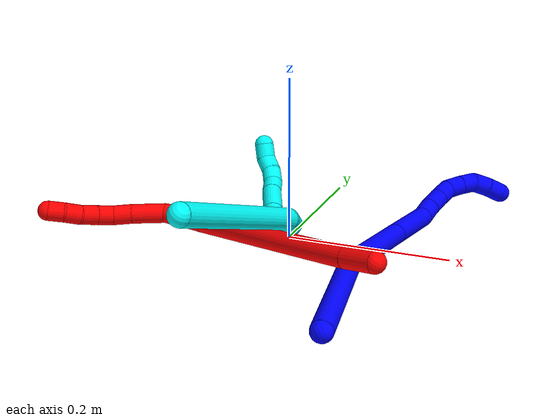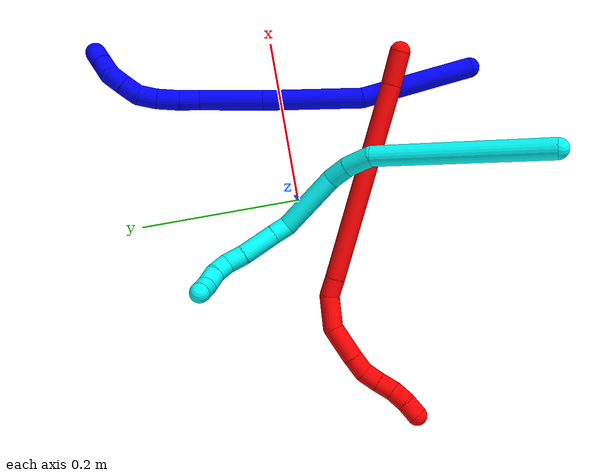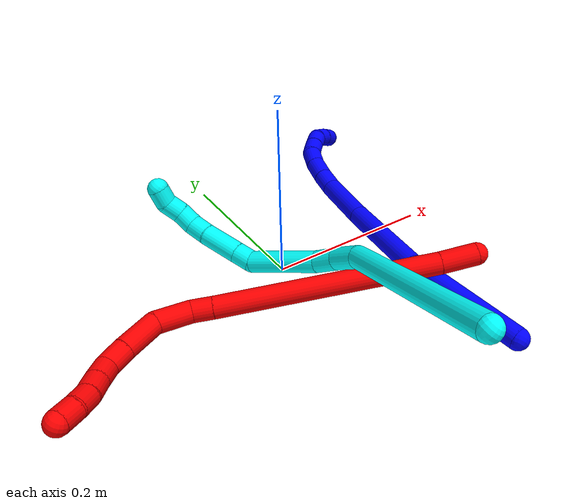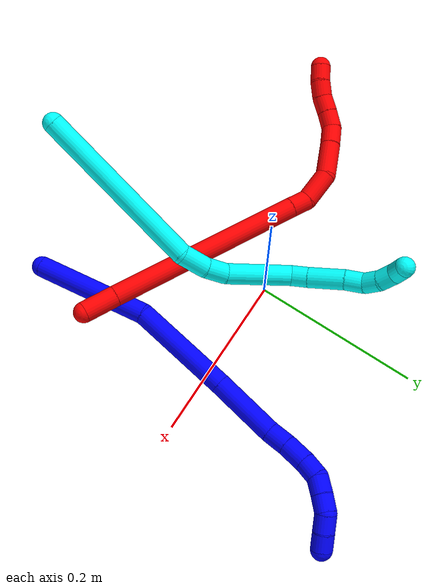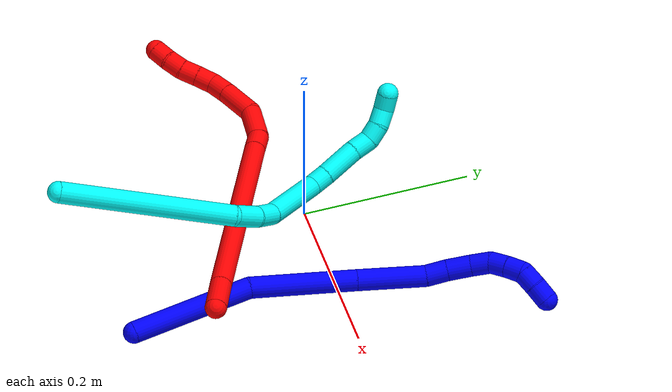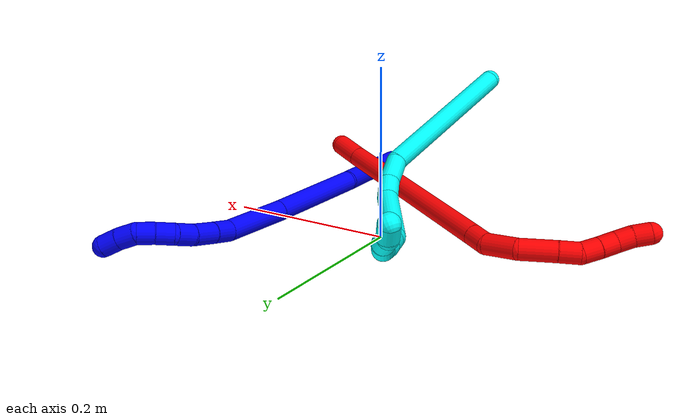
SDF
<sdf version="1.7">
 <world name="default">
  <plugin name="TubeGeneratorPlugin" filename="libtube_generator_plugin.so"/>
  <model name="photoneo_s_sensor">
   <static>1</static>
   <pose>0 0 2 1.57079 1.57079 3.14159</pose>
   <link name="link">
    <inertial><mass>0.1</mass></inertial>
    <sensor name="sensor" type="depth">
     <update_rate>30</update_rate>
     <camera>
      <horizontal_fov>1.22</horizontal_fov>
      <image><width>1920</width><height>1200</height><format>B8G8R8</format></image>
      <clip><near>0.1</near><far>4</far></clip>
      <depth_camera><output>points</output></depth_camera>
     </camera>
     <plugin name="camera_plugin" filename="libgazebo_ros_depth_camera.so">
      <baseline>0.2</baseline>
      <alwaysOn>1</alwaysOn>
      <updateRate>0.0</updateRate>
      <cameraName>camera_ir</cameraName>
      <imageTopicName>/camera/color/image_raw</imageTopicName>
      <cameraInfoTopicName>/camera/color/camera_info</cameraInfoTopicName>
      <depthImageTopicName>/camera/depth/image_raw</depthImageTopicName>
      <depthImageCameraInfoTopicName>/camera/depth/camera_info</depthImageCameraInfoTopicName>
      <pointCloudTopicName>/camera/depth/points</pointCloudTopicName>
      <frameName>fr_optical</frameName>
      <pointCloudCutoff>0.1</pointCloudCutoff>
      <pointCloudCutoffMax>2.0</pointCloudCutoffMax>
      <distortionK1>0</distortionK1>
      <distortionK2>0</distortionK2>
      <distortionK3>0</distortionK3>
      <distortionT1>0</distortionT1>
      <distortionT2>0</distortionT2>
      <CxPrime>0</CxPrime>
      <Cx>0</Cx>
      <Cy>0</Cy>
      <focalLength>0</focalLength>
      <hackBaseline>0</hackBaseline>
     </plugin>
    </sensor>
   </link>
  </model>
  <gravity>0 0 -9.8</gravity>
  <magnetic_field>6e-06 2.3e-05 -4.2e-05</magnetic_field>
  <atmosphere type="adiabatic"/>
  <physics name="default_physics" default="0" type="ode">
   <max_step_size>0.003</max_step_size>
   <real_time_factor>1</real_time_factor>
   <real_time_update_rate>1000</real_time_update_rate>
   <max_contacts>10000</max_contacts>
   <ode>
    <solver>
     <type>quick</type>
     <iters>100</iters>
     <sor>1.3</sor>
     <use_dynamic_moi_rescaling>0</use_dynamic_moi_rescaling>
    </solver>
    <constraints>
     <contact_max_correcting_vel>0</contact_max_correcting_vel>
     <contact_surface_layer>0.001</contact_surface_layer>
     <cfm>0</cfm>
     <erp>0.2</erp>
    </constraints>
   </ode>
  </physics>
  <scene><ambient>0.4 0.4 0.4 1</ambient><background>0.7 0.7 0.7 1</background><shadows>0</shadows></scene>
  <audio><device>default</device></audio>
  <spherical_coordinates>
   <surface_model>EARTH_WGS84</surface_model>
   <latitude_deg>0</latitude_deg>
   <longitude_deg>0</longitude_deg>
   <elevation>0</elevation>
   <heading_deg>0</heading_deg>
  </spherical_coordinates>
  <model name="bin">
   <static>1</static>
   <link name="bottom">
    <collision name="collision-bottom">
     <pose>0 0 -0.01 0 -0 0</pose>
     <geometry><box><size>0.8 0.6 0.02</size></box></geometry>
     <surface>
      <friction><ode><mu>100</mu><mu2>100</mu2></ode></friction>
      <contact><collide_bitmask>65535</collide_bitmask></contact>
     </surface>
    </collision>
   </link>
   <link name="west_wall">
    <collision name="collision-west_wall">
     <pose>-0.41 0 0.1 0 -0 0</pose>
     <geometry><box><size>0.02 0.6 0.2</size></box></geometry>
     <surface>
      <friction><ode><mu>100</mu><mu2>100</mu2></ode></friction>
      <contact><collide_bitmask>65535</collide_bitmask></contact>
     </surface>
    </collision>
   </link>
   <link name="east_wall">
    <collision name="collision-east_wall">
     <pose>0.41 0 0.1 0 -0 0</pose>
     <geometry><box><size>0.02 0.6 0.2</size></box></geometry>
     <surface>
      <friction><ode><mu>100</mu><mu2>100</mu2></ode></friction>
      <contact><collide_bitmask>65535</collide_bitmask></contact>
     </surface>
    </collision>
   </link>
   <link name="south_wall">
    <collision name="collision-south_wall">
     <pose>0 -0.31 0.1 0 -0 0</pose>
     <geometry><box><size>0.8 0.02 0.2</size></box></geometry>
     <surface>
      <friction><ode><mu>100</mu><mu2>100</mu2></ode></friction>
      <contact><collide_bitmask>65535</collide_bitmask></contact>
     </surface>
    </collision>
   </link>
   <link name="north_wall">
    <collision name="collision-north_wall">
     <pose>0 0.31 0.1 0 -0 0</pose>
     <geometry><box><size>0.8 0.02 0.2</size></box></geometry>
     <surface>
      <friction><ode><mu>100</mu><mu2>100</mu2></ode></friction>
      <contact><collide_bitmask>65535</collide_bitmask></contact>
     </surface>
    </collision>
   </link>
  </model>
  <model name="1">
   <static>0</static>
   <link name="1">
    <collision name="collision-cylinder-e_1_1_4">
     <pose>-0.020411 0.063353 -0.022928 -1.91804 -0.294154 0.416217</pose>
     <geometry><cylinder><radius>0.0125</radius><length>0.140796</length></cylinder></geometry>
     <surface>
      <friction><ode><mu>1.16</mu><mu2>1.16</mu2><slip1>0</slip1><slip2>0</slip2></ode></friction>
      <contact><ode><kp>1e+06</kp><kd>1</kd><max_vel>0</max_vel><min_depth>0.001</min_depth></ode></contact>
     </surface>
    </collision>
    <visual name="visual-cylinder-e_1_1_4">
     <pose>-0.020411 0.063353 -0.022928 -1.91804 -0.294154 0.416217</pose>
     <geometry><cylinder><radius>0.0125</radius><length>0.140796</length></cylinder></geometry>
     <material><ambient>0 0 1 1</ambient></material>
    </visual>
    <collision name="collision-cylinder-e_2_4_5">
     <pose>-0.071179 0.171336 -0.074577 -2.14262 -0.519578 0.906596</pose>
     <geometry><cylinder><radius>0.0125</radius><length>0.122285</length></cylinder></geometry>
     <surface>
      <friction><ode><mu>1.16</mu><mu2>1.16</mu2><slip1>0</slip1><slip2>0</slip2></ode></friction>
      <contact><ode><kp>1e+06</kp><kd>1</kd><max_vel>0</max_vel><min_depth>0.001</min_depth></ode></contact>
     </surface>
    </collision>
    <visual name="visual-cylinder-e_2_4_5">
     <pose>-0.071179 0.171336 -0.074577 -2.14262 -0.519578 0.906596</pose>
     <geometry><cylinder><radius>0.0125</radius><length>0.122285</length></cylinder></geometry>
     <material><ambient>0 0 1 1</ambient></material>
    </visual>
    <collision name="collision-cylinder-e_3_5_6">
     <pose>-0.120974 0.244403 -0.123163 -2.18054 -0.510751 0.92863</pose>
     <geometry><cylinder><radius>0.0125</radius><length>0.079523</length></cylinder></geometry>
     <surface>
      <friction><ode><mu>1.16</mu><mu2>1.16</mu2><slip1>0</slip1><slip2>0</slip2></ode></friction>
      <contact><ode><kp>1e+06</kp><kd>1</kd><max_vel>0</max_vel><min_depth>0.001</min_depth></ode></contact>
     </surface>
    </collision>
    <visual name="visual-cylinder-e_3_5_6">
     <pose>-0.120974 0.244403 -0.123163 -2.18054 -0.510751 0.92863</pose>
     <geometry><cylinder><radius>0.0125</radius><length>0.079523</length></cylinder></geometry>
     <material><ambient>0 0 1 1</ambient></material>
    </visual>
    <collision name="collision-cylinder-e_4_6_7">
     <pose>-0.143781 0.282793 -0.150114 -2.18956 -0.269159 0.513648</pose>
     <geometry><cylinder><radius>0.0125</radius><length>0.02535</length></cylinder></geometry>
     <surface>
      <friction><ode><mu>1.16</mu><mu2>1.16</mu2><slip1>0</slip1><slip2>0</slip2></ode></friction>
      <contact><ode><kp>1e+06</kp><kd>1</kd><max_vel>0</max_vel><min_depth>0.001</min_depth></ode></contact>
     </surface>
    </collision>
    <visual name="visual-cylinder-e_4_6_7">
     <pose>-0.143781 0.282793 -0.150114 -2.18956 -0.269159 0.513648</pose>
     <geometry><cylinder><radius>0.0125</radius><length>0.02535</length></cylinder></geometry>
     <material><ambient>0 0 1 1</ambient></material>
    </visual>
    <collision name="collision-cylinder-e_5_7_8">
     <pose>-0.151322 0.302948 -0.165828 -2.27274 -0.302532 0.634825</pose>
     <geometry><cylinder><radius>0.0125</radius><length>0.027992</length></cylinder></geometry>
     <surface>
      <friction><ode><mu>1.16</mu><mu2>1.16</mu2><slip1>0</slip1><slip2>0</slip2></ode></friction>
      <contact><ode><kp>1e+06</kp><kd>1</kd><max_vel>0</max_vel><min_depth>0.001</min_depth></ode></contact>
     </surface>
    </collision>
    <visual name="visual-cylinder-e_5_7_8">
     <pose>-0.151322 0.302948 -0.165828 -2.27274 -0.302532 0.634825</pose>
     <geometry><cylinder><radius>0.0125</radius><length>0.027992</length></cylinder></geometry>
     <material><ambient>0 0 1 1</ambient></material>
    </visual>
    <collision name="collision-cylinder-e_6_8_9">
     <pose>-0.158162 0.320309 -0.182772 -2.43095 -0.238636 0.625002</pose>
     <geometry><cylinder><radius>0.0125</radius><length>0.022588</length></cylinder></geometry>
     <surface>
      <friction><ode><mu>1.16</mu><mu2>1.16</mu2><slip1>0</slip1><slip2>0</slip2></ode></friction>
      <contact><ode><kp>1e+06</kp><kd>1</kd><max_vel>0</max_vel><min_depth>0.001</min_depth></ode></contact>
     </surface>
    </collision>
    <visual name="visual-cylinder-e_6_8_9">
     <pose>-0.158162 0.320309 -0.182772 -2.43095 -0.238636 0.625002</pose>
     <geometry><cylinder><radius>0.0125</radius><length>0.022588</length></cylinder></geometry>
     <material><ambient>0 0 1 1</ambient></material>
    </visual>
    <collision name="collision-cylinder-e_7_9_10">
     <pose>-0.164907 0.33003 -0.200234 -2.86829 -0.405395 1.96224</pose>
     <geometry><cylinder><radius>0.0125</radius><length>0.020668</length></cylinder></geometry>
     <surface>
      <friction><ode><mu>1.16</mu><mu2>1.16</mu2><slip1>0</slip1><slip2>0</slip2></ode></friction>
      <contact><ode><kp>1e+06</kp><kd>1</kd><max_vel>0</max_vel><min_depth>0.001</min_depth></ode></contact>
     </surface>
    </collision>
    <visual name="visual-cylinder-e_7_9_10">
     <pose>-0.164907 0.33003 -0.200234 -2.86829 -0.405395 1.96224</pose>
     <geometry><cylinder><radius>0.0125</radius><length>0.020668</length></cylinder></geometry>
     <material><ambient>0 0 1 1</ambient></material>
    </visual>
    <collision name="collision-cylinder-e_8_10_11">
     <pose>-0.173551 0.334601 -0.218049 -2.91414 -0.474189 2.2585</pose>
     <geometry><cylinder><radius>0.0125</radius><length>0.020009</length></cylinder></geometry>
     <surface>
      <friction><ode><mu>1.16</mu><mu2>1.16</mu2><slip1>0</slip1><slip2>0</slip2></ode></friction>
      <contact><ode><kp>1e+06</kp><kd>1</kd><max_vel>0</max_vel><min_depth>0.001</min_depth></ode></contact>
     </surface>
    </collision>
    <visual name="visual-cylinder-e_8_10_11">
     <pose>-0.173551 0.334601 -0.218049 -2.91414 -0.474189 2.2585</pose>
     <geometry><cylinder><radius>0.0125</radius><length>0.020009</length></cylinder></geometry>
     <material><ambient>0 0 1 1</ambient></material>
    </visual>
    <collision name="collision-cylinder-e_9_11_12">
     <pose>-0.185789 0.335008 -0.233466 2.90875 -0.835864 -2.62658</pose>
     <geometry><cylinder><radius>0.0125</radius><length>0.020677</length></cylinder></geometry>
     <surface>
      <friction><ode><mu>1.16</mu><mu2>1.16</mu2><slip1>0</slip1><slip2>0</slip2></ode></friction>
      <contact><ode><kp>1e+06</kp><kd>1</kd><max_vel>0</max_vel><min_depth>0.001</min_depth></ode></contact>
     </surface>
    </collision>
    <visual name="visual-cylinder-e_9_11_12">
     <pose>-0.185789 0.335008 -0.233466 2.90875 -0.835864 -2.62658</pose>
     <geometry><cylinder><radius>0.0125</radius><length>0.020677</length></cylinder></geometry>
     <material><ambient>0 0 1 1</ambient></material>
    </visual>
    <collision name="collision-cylinder-e_10_12_2">
     <pose>-0.20163 0.331803 -0.245846 2.86407 -0.948738 -2.61046</pose>
     <geometry><cylinder><radius>0.0125</radius><length>0.020111</length></cylinder></geometry>
     <surface>
      <friction><ode><mu>1.16</mu><mu2>1.16</mu2><slip1>0</slip1><slip2>0</slip2></ode></friction>
      <contact><ode><kp>1e+06</kp><kd>1</kd><max_vel>0</max_vel><min_depth>0.001</min_depth></ode></contact>
     </surface>
    </collision>
    <visual name="visual-cylinder-e_10_12_2">
     <pose>-0.20163 0.331803 -0.245846 2.86407 -0.948738 -2.61046</pose>
     <geometry><cylinder><radius>0.0125</radius><length>0.020111</length></cylinder></geometry>
     <material><ambient>0 0 1 1</ambient></material>
    </visual>
    <collision name="collision-sphere-2">
     <pose>-0.209802 0.330198 -0.251482 0 -0 0</pose>
     <geometry><sphere><radius>0.0125</radius></sphere></geometry>
     <surface>
      <friction><ode><mu>1.16</mu><mu2>1.16</mu2><slip1>0</slip1><slip2>0</slip2></ode></friction>
      <contact><ode><kp>1e+06</kp><kd>1</kd><max_vel>0</max_vel><min_depth>0.001</min_depth></ode></contact>
     </surface>
    </collision>
    <visual name="visual-sphere-2">
     <pose>-0.209802 0.330198 -0.251482 0 -0 0</pose>
     <geometry><sphere><radius>0.0125</radius></sphere></geometry>
     <material><ambient>0 0 1 1</ambient></material>
    </visual>
    <collision name="collision-sphere-12">
     <pose>-0.193458 0.333408 -0.240211 0 -0 0</pose>
     <geometry><sphere><radius>0.0125</radius></sphere></geometry>
     <surface>
      <friction><ode><mu>1.16</mu><mu2>1.16</mu2><slip1>0</slip1><slip2>0</slip2></ode></friction>
      <contact><ode><kp>1e+06</kp><kd>1</kd><max_vel>0</max_vel><min_depth>0.001</min_depth></ode></contact>
     </surface>
    </collision>
    <visual name="visual-sphere-12">
     <pose>-0.193458 0.333408 -0.240211 0 -0 0</pose>
     <geometry><sphere><radius>0.0125</radius></sphere></geometry>
     <material><ambient>0 0 1 1</ambient></material>
    </visual>
    <collision name="collision-sphere-11">
     <pose>-0.178119 0.336608 -0.226721 0 -0 0</pose>
     <geometry><sphere><radius>0.0125</radius></sphere></geometry>
     <surface>
      <friction><ode><mu>1.16</mu><mu2>1.16</mu2><slip1>0</slip1><slip2>0</slip2></ode></friction>
      <contact><ode><kp>1e+06</kp><kd>1</kd><max_vel>0</max_vel><min_depth>0.001</min_depth></ode></contact>
     </surface>
    </collision>
    <visual name="visual-sphere-11">
     <pose>-0.178119 0.336608 -0.226721 0 -0 0</pose>
     <geometry><sphere><radius>0.0125</radius></sphere></geometry>
     <material><ambient>0 0 1 1</ambient></material>
    </visual>
    <collision name="collision-sphere-10">
     <pose>-0.168982 0.332594 -0.209378 0 -0 0</pose>
     <geometry><sphere><radius>0.0125</radius></sphere></geometry>
     <surface>
      <friction><ode><mu>1.16</mu><mu2>1.16</mu2><slip1>0</slip1><slip2>0</slip2></ode></friction>
      <contact><ode><kp>1e+06</kp><kd>1</kd><max_vel>0</max_vel><min_depth>0.001</min_depth></ode></contact>
     </surface>
    </collision>
    <visual name="visual-sphere-10">
     <pose>-0.168982 0.332594 -0.209378 0 -0 0</pose>
     <geometry><sphere><radius>0.0125</radius></sphere></geometry>
     <material><ambient>0 0 1 1</ambient></material>
    </visual>
    <collision name="collision-sphere-9">
     <pose>-0.160831 0.327467 -0.19109 0 -0 0</pose>
     <geometry><sphere><radius>0.0125</radius></sphere></geometry>
     <surface>
      <friction><ode><mu>1.16</mu><mu2>1.16</mu2><slip1>0</slip1><slip2>0</slip2></ode></friction>
      <contact><ode><kp>1e+06</kp><kd>1</kd><max_vel>0</max_vel><min_depth>0.001</min_depth></ode></contact>
     </surface>
    </collision>
    <visual name="visual-sphere-9">
     <pose>-0.160831 0.327467 -0.19109 0 -0 0</pose>
     <geometry><sphere><radius>0.0125</radius></sphere></geometry>
     <material><ambient>0 0 1 1</ambient></material>
    </visual>
    <collision name="collision-sphere-4">
     <pose>-0.040821 0.126706 -0.045856 0 -0 0</pose>
     <geometry><sphere><radius>0.0125</radius></sphere></geometry>
     <surface>
      <friction><ode><mu>1.16</mu><mu2>1.16</mu2><slip1>0</slip1><slip2>0</slip2></ode></friction>
      <contact><ode><kp>1e+06</kp><kd>1</kd><max_vel>0</max_vel><min_depth>0.001</min_depth></ode></contact>
     </surface>
    </collision>
    <visual name="visual-sphere-4">
     <pose>-0.040821 0.126706 -0.045856 0 -0 0</pose>
     <geometry><sphere><radius>0.0125</radius></sphere></geometry>
     <material><ambient>0 0 1 1</ambient></material>
    </visual>
    <collision name="collision-sphere-1">
     <geometry><sphere><radius>0.0125</radius></sphere></geometry>
     <surface>
      <friction><ode><mu>1.16</mu><mu2>1.16</mu2><slip1>0</slip1><slip2>0</slip2></ode></friction>
      <contact><ode><kp>1e+06</kp><kd>1</kd><max_vel>0</max_vel><min_depth>0.001</min_depth></ode></contact>
     </surface>
    </collision>
    <visual name="visual-sphere-1">
     <geometry><sphere><radius>0.0125</radius></sphere></geometry>
     <material><ambient>0 0 1 1</ambient></material>
    </visual>
    <collision name="collision-sphere-8">
     <pose>-0.155492 0.31315 -0.174455 0 -0 0</pose>
     <geometry><sphere><radius>0.0125</radius></sphere></geometry>
     <surface>
      <friction><ode><mu>1.16</mu><mu2>1.16</mu2><slip1>0</slip1><slip2>0</slip2></ode></friction>
      <contact><ode><kp>1e+06</kp><kd>1</kd><max_vel>0</max_vel><min_depth>0.001</min_depth></ode></contact>
     </surface>
    </collision>
    <visual name="visual-sphere-8">
     <pose>-0.155492 0.31315 -0.174455 0 -0 0</pose>
     <geometry><sphere><radius>0.0125</radius></sphere></geometry>
     <material><ambient>0 0 1 1</ambient></material>
    </visual>
    <collision name="collision-sphere-5">
     <pose>-0.101537 0.215967 -0.103299 0 -0 0</pose>
     <geometry><sphere><radius>0.0125</radius></sphere></geometry>
     <surface>
      <friction><ode><mu>1.16</mu><mu2>1.16</mu2><slip1>0</slip1><slip2>0</slip2></ode></friction>
      <contact><ode><kp>1e+06</kp><kd>1</kd><max_vel>0</max_vel><min_depth>0.001</min_depth></ode></contact>
     </surface>
    </collision>
    <visual name="visual-sphere-5">
     <pose>-0.101537 0.215967 -0.103299 0 -0 0</pose>
     <geometry><sphere><radius>0.0125</radius></sphere></geometry>
     <material><ambient>0 0 1 1</ambient></material>
    </visual>
    <collision name="collision-sphere-6">
     <pose>-0.140411 0.272839 -0.143026 0 -0 0</pose>
     <geometry><sphere><radius>0.0125</radius></sphere></geometry>
     <surface>
      <friction><ode><mu>1.16</mu><mu2>1.16</mu2><slip1>0</slip1><slip2>0</slip2></ode></friction>
      <contact><ode><kp>1e+06</kp><kd>1</kd><max_vel>0</max_vel><min_depth>0.001</min_depth></ode></contact>
     </surface>
    </collision>
    <visual name="visual-sphere-6">
     <pose>-0.140411 0.272839 -0.143026 0 -0 0</pose>
     <geometry><sphere><radius>0.0125</radius></sphere></geometry>
     <material><ambient>0 0 1 1</ambient></material>
    </visual>
    <collision name="collision-sphere-7">
     <pose>-0.147152 0.292746 -0.157201 0 -0 0</pose>
     <geometry><sphere><radius>0.0125</radius></sphere></geometry>
     <surface>
      <friction><ode><mu>1.16</mu><mu2>1.16</mu2><slip1>0</slip1><slip2>0</slip2></ode></friction>
      <contact><ode><kp>1e+06</kp><kd>1</kd><max_vel>0</max_vel><min_depth>0.001</min_depth></ode></contact>
     </surface>
    </collision>
    <visual name="visual-sphere-7">
     <pose>-0.147152 0.292746 -0.157201 0 -0 0</pose>
     <geometry><sphere><radius>0.0125</radius></sphere></geometry>
     <material><ambient>0 0 1 1</ambient></material>
    </visual>
    <inertial>
     <pose>-0.094858 0.198615 -0.105982 0 -0 0</pose>
     <mass>0.5</mass>
     <inertia>
      <ixx>0.000538</ixx>
      <ixy>0</ixy>
      <ixz>0</ixz>
      <iyy>0.000214</iyy>
      <iyz>0</iyz>
      <izz>-0.000212</izz>
     </inertia>
    </inertial>
   </link>
   <pose>0.12569 -0.239151 0.011496 2.78348 -1.0204 -2.2772</pose>
  </model>
  <model name="2">
   <static>0</static>
   <link name="2">
    <collision name="collision-cylinder-e_1_1_4">
     <pose>-0.015942 0.001799 0.01258 -0.142024 -0.89781 0.068502</pose>
     <geometry><cylinder><radius>0.0125</radius><length>0.040775</length></cylinder></geometry>
     <surface>
      <friction><ode><mu>1.16</mu><mu2>1.16</mu2><slip1>0</slip1><slip2>0</slip2></ode></friction>
      <contact><ode><kp>1e+06</kp><kd>1</kd><max_vel>0</max_vel><min_depth>0.001</min_depth></ode></contact>
     </surface>
    </collision>
    <visual name="visual-cylinder-e_1_1_4">
     <pose>-0.015942 0.001799 0.01258 -0.142024 -0.89781 0.068502</pose>
     <geometry><cylinder><radius>0.0125</radius><length>0.040775</length></cylinder></geometry>
     <material><ambient>1 0 0 1</ambient></material>
    </visual>
    <collision name="collision-cylinder-e_2_4_5">
     <pose>-0.131667 0.0123 0.095554 -0.122996 -0.952833 0.063532</pose>
     <geometry><cylinder><radius>0.0125</radius><length>0.244848</length></cylinder></geometry>
     <surface>
      <friction><ode><mu>1.16</mu><mu2>1.16</mu2><slip1>0</slip1><slip2>0</slip2></ode></friction>
      <contact><ode><kp>1e+06</kp><kd>1</kd><max_vel>0</max_vel><min_depth>0.001</min_depth></ode></contact>
     </surface>
    </collision>
    <visual name="visual-cylinder-e_2_4_5">
     <pose>-0.131667 0.0123 0.095554 -0.122996 -0.952833 0.063532</pose>
     <geometry><cylinder><radius>0.0125</radius><length>0.244848</length></cylinder></geometry>
     <material><ambient>1 0 0 1</ambient></material>
    </visual>
    <collision name="collision-cylinder-e_3_5_6">
     <pose>-0.241291 0.021587 0.172676 -0.086713 -0.969327 0.045679</pose>
     <geometry><cylinder><radius>0.0125</radius><length>0.023871</length></cylinder></geometry>
     <surface>
      <friction><ode><mu>1.16</mu><mu2>1.16</mu2><slip1>0</slip1><slip2>0</slip2></ode></friction>
      <contact><ode><kp>1e+06</kp><kd>1</kd><max_vel>0</max_vel><min_depth>0.001</min_depth></ode></contact>
     </surface>
    </collision>
    <visual name="visual-cylinder-e_3_5_6">
     <pose>-0.241291 0.021587 0.172676 -0.086713 -0.969327 0.045679</pose>
     <geometry><cylinder><radius>0.0125</radius><length>0.023871</length></cylinder></geometry>
     <material><ambient>1 0 0 1</ambient></material>
    </visual>
    <collision name="collision-cylinder-e_4_6_7">
     <pose>-0.266427 0.031587 0.188096 -0.825378 -0.873406 0.403173</pose>
     <geometry><cylinder><radius>0.0125</radius><length>0.039906</length></cylinder></geometry>
     <surface>
      <friction><ode><mu>1.16</mu><mu2>1.16</mu2><slip1>0</slip1><slip2>0</slip2></ode></friction>
      <contact><ode><kp>1e+06</kp><kd>1</kd><max_vel>0</max_vel><min_depth>0.001</min_depth></ode></contact>
     </surface>
    </collision>
    <visual name="visual-cylinder-e_4_6_7">
     <pose>-0.266427 0.031587 0.188096 -0.825378 -0.873406 0.403173</pose>
     <geometry><cylinder><radius>0.0125</radius><length>0.039906</length></cylinder></geometry>
     <material><ambient>1 0 0 1</ambient></material>
    </visual>
    <collision name="collision-cylinder-e_5_7_8">
     <pose>-0.290625 0.058161 0.206258 -1.06647 -0.426432 0.254217</pose>
     <geometry><cylinder><radius>0.0125</radius><length>0.043051</length></cylinder></geometry>
     <surface>
      <friction><ode><mu>1.16</mu><mu2>1.16</mu2><slip1>0</slip1><slip2>0</slip2></ode></friction>
      <contact><ode><kp>1e+06</kp><kd>1</kd><max_vel>0</max_vel><min_depth>0.001</min_depth></ode></contact>
     </surface>
    </collision>
    <visual name="visual-cylinder-e_5_7_8">
     <pose>-0.290625 0.058161 0.206258 -1.06647 -0.426432 0.254217</pose>
     <geometry><cylinder><radius>0.0125</radius><length>0.043051</length></cylinder></geometry>
     <material><ambient>1 0 0 1</ambient></material>
    </visual>
    <collision name="collision-cylinder-e_6_8_9">
     <pose>-0.303897 0.085336 0.221387 -1.05651 -0.362898 0.21332</pose>
     <geometry><cylinder><radius>0.0125</radius><length>0.024612</length></cylinder></geometry>
     <surface>
      <friction><ode><mu>1.16</mu><mu2>1.16</mu2><slip1>0</slip1><slip2>0</slip2></ode></friction>
      <contact><ode><kp>1e+06</kp><kd>1</kd><max_vel>0</max_vel><min_depth>0.001</min_depth></ode></contact>
     </surface>
    </collision>
    <visual name="visual-cylinder-e_6_8_9">
     <pose>-0.303897 0.085336 0.221387 -1.05651 -0.362898 0.21332</pose>
     <geometry><cylinder><radius>0.0125</radius><length>0.024612</length></cylinder></geometry>
     <material><ambient>1 0 0 1</ambient></material>
    </visual>
    <collision name="collision-cylinder-e_7_9_10">
     <pose>-0.309821 0.105884 0.228405 -1.44252 -0.145435 0.127932</pose>
     <geometry><cylinder><radius>0.0125</radius><length>0.021466</length></cylinder></geometry>
     <surface>
      <friction><ode><mu>1.16</mu><mu2>1.16</mu2><slip1>0</slip1><slip2>0</slip2></ode></friction>
      <contact><ode><kp>1e+06</kp><kd>1</kd><max_vel>0</max_vel><min_depth>0.001</min_depth></ode></contact>
     </surface>
    </collision>
    <visual name="visual-cylinder-e_7_9_10">
     <pose>-0.309821 0.105884 0.228405 -1.44252 -0.145435 0.127932</pose>
     <geometry><cylinder><radius>0.0125</radius><length>0.021466</length></cylinder></geometry>
     <material><ambient>1 0 0 1</ambient></material>
    </visual>
    <collision name="collision-cylinder-e_8_10_11">
     <pose>-0.312369 0.126709 0.230724 -1.47771 -0.095772 0.087259</pose>
     <geometry><cylinder><radius>0.0125</radius><length>0.02077</length></cylinder></geometry>
     <surface>
      <friction><ode><mu>1.16</mu><mu2>1.16</mu2><slip1>0</slip1><slip2>0</slip2></ode></friction>
      <contact><ode><kp>1e+06</kp><kd>1</kd><max_vel>0</max_vel><min_depth>0.001</min_depth></ode></contact>
     </surface>
    </collision>
    <visual name="visual-cylinder-e_8_10_11">
     <pose>-0.312369 0.126709 0.230724 -1.47771 -0.095772 0.087259</pose>
     <geometry><cylinder><radius>0.0125</radius><length>0.02077</length></cylinder></geometry>
     <material><ambient>1 0 0 1</ambient></material>
    </visual>
    <collision name="collision-cylinder-e_9_11_12">
     <pose>-0.316292 0.146746 0.232586 -1.47867 -0.290851 0.265533</pose>
     <geometry><cylinder><radius>0.0125</radius><length>0.020429</length></cylinder></geometry>
     <surface>
      <friction><ode><mu>1.16</mu><mu2>1.16</mu2><slip1>0</slip1><slip2>0</slip2></ode></friction>
      <contact><ode><kp>1e+06</kp><kd>1</kd><max_vel>0</max_vel><min_depth>0.001</min_depth></ode></contact>
     </surface>
    </collision>
    <visual name="visual-cylinder-e_9_11_12">
     <pose>-0.316292 0.146746 0.232586 -1.47867 -0.290851 0.265533</pose>
     <geometry><cylinder><radius>0.0125</radius><length>0.020429</length></cylinder></geometry>
     <material><ambient>1 0 0 1</ambient></material>
    </visual>
    <collision name="collision-cylinder-e_10_12_2">
     <pose>-0.323128 0.165546 0.235823 -1.31824 -0.395775 0.308208</pose>
     <geometry><cylinder><radius>0.0125</radius><length>0.020271</length></cylinder></geometry>
     <surface>
      <friction><ode><mu>1.16</mu><mu2>1.16</mu2><slip1>0</slip1><slip2>0</slip2></ode></friction>
      <contact><ode><kp>1e+06</kp><kd>1</kd><max_vel>0</max_vel><min_depth>0.001</min_depth></ode></contact>
     </surface>
    </collision>
    <visual name="visual-cylinder-e_10_12_2">
     <pose>-0.323128 0.165546 0.235823 -1.31824 -0.395775 0.308208</pose>
     <geometry><cylinder><radius>0.0125</radius><length>0.020271</length></cylinder></geometry>
     <material><ambient>1 0 0 1</ambient></material>
    </visual>
    <collision name="collision-sphere-2">
     <pose>-0.327036 0.174601 0.23816 0 -0 0</pose>
     <geometry><sphere><radius>0.0125</radius></sphere></geometry>
     <surface>
      <friction><ode><mu>1.16</mu><mu2>1.16</mu2><slip1>0</slip1><slip2>0</slip2></ode></friction>
      <contact><ode><kp>1e+06</kp><kd>1</kd><max_vel>0</max_vel><min_depth>0.001</min_depth></ode></contact>
     </surface>
    </collision>
    <visual name="visual-sphere-2">
     <pose>-0.327036 0.174601 0.23816 0 -0 0</pose>
     <geometry><sphere><radius>0.0125</radius></sphere></geometry>
     <material><ambient>1 0 0 1</ambient></material>
    </visual>
    <collision name="collision-sphere-12">
     <pose>-0.319221 0.15649 0.233486 0 -0 0</pose>
     <geometry><sphere><radius>0.0125</radius></sphere></geometry>
     <surface>
      <friction><ode><mu>1.16</mu><mu2>1.16</mu2><slip1>0</slip1><slip2>0</slip2></ode></friction>
      <contact><ode><kp>1e+06</kp><kd>1</kd><max_vel>0</max_vel><min_depth>0.001</min_depth></ode></contact>
     </surface>
    </collision>
    <visual name="visual-sphere-12">
     <pose>-0.319221 0.15649 0.233486 0 -0 0</pose>
     <geometry><sphere><radius>0.0125</radius></sphere></geometry>
     <material><ambient>1 0 0 1</ambient></material>
    </visual>
    <collision name="collision-sphere-11">
     <pose>-0.313362 0.137002 0.231685 0 -0 0</pose>
     <geometry><sphere><radius>0.0125</radius></sphere></geometry>
     <surface>
      <friction><ode><mu>1.16</mu><mu2>1.16</mu2><slip1>0</slip1><slip2>0</slip2></ode></friction>
      <contact><ode><kp>1e+06</kp><kd>1</kd><max_vel>0</max_vel><min_depth>0.001</min_depth></ode></contact>
     </surface>
    </collision>
    <visual name="visual-sphere-11">
     <pose>-0.313362 0.137002 0.231685 0 -0 0</pose>
     <geometry><sphere><radius>0.0125</radius></sphere></geometry>
     <material><ambient>1 0 0 1</ambient></material>
    </visual>
    <collision name="collision-sphere-10">
     <pose>-0.311376 0.116417 0.229763 0 -0 0</pose>
     <geometry><sphere><radius>0.0125</radius></sphere></geometry>
     <surface>
      <friction><ode><mu>1.16</mu><mu2>1.16</mu2><slip1>0</slip1><slip2>0</slip2></ode></friction>
      <contact><ode><kp>1e+06</kp><kd>1</kd><max_vel>0</max_vel><min_depth>0.001</min_depth></ode></contact>
     </surface>
    </collision>
    <visual name="visual-sphere-10">
     <pose>-0.311376 0.116417 0.229763 0 -0 0</pose>
     <geometry><sphere><radius>0.0125</radius></sphere></geometry>
     <material><ambient>1 0 0 1</ambient></material>
    </visual>
    <collision name="collision-sphere-9">
     <pose>-0.308265 0.095352 0.227046 0 -0 0</pose>
     <geometry><sphere><radius>0.0125</radius></sphere></geometry>
     <surface>
      <friction><ode><mu>1.16</mu><mu2>1.16</mu2><slip1>0</slip1><slip2>0</slip2></ode></friction>
      <contact><ode><kp>1e+06</kp><kd>1</kd><max_vel>0</max_vel><min_depth>0.001</min_depth></ode></contact>
     </surface>
    </collision>
    <visual name="visual-sphere-9">
     <pose>-0.308265 0.095352 0.227046 0 -0 0</pose>
     <geometry><sphere><radius>0.0125</radius></sphere></geometry>
     <material><ambient>1 0 0 1</ambient></material>
    </visual>
    <collision name="collision-sphere-4">
     <pose>-0.031884 0.003598 0.02516 0 -0 0</pose>
     <geometry><sphere><radius>0.0125</radius></sphere></geometry>
     <surface>
      <friction><ode><mu>1.16</mu><mu2>1.16</mu2><slip1>0</slip1><slip2>0</slip2></ode></friction>
      <contact><ode><kp>1e+06</kp><kd>1</kd><max_vel>0</max_vel><min_depth>0.001</min_depth></ode></contact>
     </surface>
    </collision>
    <visual name="visual-sphere-4">
     <pose>-0.031884 0.003598 0.02516 0 -0 0</pose>
     <geometry><sphere><radius>0.0125</radius></sphere></geometry>
     <material><ambient>1 0 0 1</ambient></material>
    </visual>
    <collision name="collision-sphere-1">
     <geometry><sphere><radius>0.0125</radius></sphere></geometry>
     <surface>
      <friction><ode><mu>1.16</mu><mu2>1.16</mu2><slip1>0</slip1><slip2>0</slip2></ode></friction>
      <contact><ode><kp>1e+06</kp><kd>1</kd><max_vel>0</max_vel><min_depth>0.001</min_depth></ode></contact>
     </surface>
    </collision>
    <visual name="visual-sphere-1">
     <geometry><sphere><radius>0.0125</radius></sphere></geometry>
     <material><ambient>1 0 0 1</ambient></material>
    </visual>
    <collision name="collision-sphere-8">
     <pose>-0.299528 0.075319 0.215728 0 -0 0</pose>
     <geometry><sphere><radius>0.0125</radius></sphere></geometry>
     <surface>
      <friction><ode><mu>1.16</mu><mu2>1.16</mu2><slip1>0</slip1><slip2>0</slip2></ode></friction>
      <contact><ode><kp>1e+06</kp><kd>1</kd><max_vel>0</max_vel><min_depth>0.001</min_depth></ode></contact>
     </surface>
    </collision>
    <visual name="visual-sphere-8">
     <pose>-0.299528 0.075319 0.215728 0 -0 0</pose>
     <geometry><sphere><radius>0.0125</radius></sphere></geometry>
     <material><ambient>1 0 0 1</ambient></material>
    </visual>
    <collision name="collision-sphere-5">
     <pose>-0.23145 0.021002 0.165948 0 -0 0</pose>
     <geometry><sphere><radius>0.0125</radius></sphere></geometry>
     <surface>
      <friction><ode><mu>1.16</mu><mu2>1.16</mu2><slip1>0</slip1><slip2>0</slip2></ode></friction>
      <contact><ode><kp>1e+06</kp><kd>1</kd><max_vel>0</max_vel><min_depth>0.001</min_depth></ode></contact>
     </surface>
    </collision>
    <visual name="visual-sphere-5">
     <pose>-0.23145 0.021002 0.165948 0 -0 0</pose>
     <geometry><sphere><radius>0.0125</radius></sphere></geometry>
     <material><ambient>1 0 0 1</ambient></material>
    </visual>
    <collision name="collision-sphere-6">
     <pose>-0.251132 0.022171 0.179404 0 -0 0</pose>
     <geometry><sphere><radius>0.0125</radius></sphere></geometry>
     <surface>
      <friction><ode><mu>1.16</mu><mu2>1.16</mu2><slip1>0</slip1><slip2>0</slip2></ode></friction>
      <contact><ode><kp>1e+06</kp><kd>1</kd><max_vel>0</max_vel><min_depth>0.001</min_depth></ode></contact>
     </surface>
    </collision>
    <visual name="visual-sphere-6">
     <pose>-0.251132 0.022171 0.179404 0 -0 0</pose>
     <geometry><sphere><radius>0.0125</radius></sphere></geometry>
     <material><ambient>1 0 0 1</ambient></material>
    </visual>
    <collision name="collision-sphere-7">
     <pose>-0.281721 0.041003 0.196788 0 -0 0</pose>
     <geometry><sphere><radius>0.0125</radius></sphere></geometry>
     <surface>
      <friction><ode><mu>1.16</mu><mu2>1.16</mu2><slip1>0</slip1><slip2>0</slip2></ode></friction>
      <contact><ode><kp>1e+06</kp><kd>1</kd><max_vel>0</max_vel><min_depth>0.001</min_depth></ode></contact>
     </surface>
    </collision>
    <visual name="visual-sphere-7">
     <pose>-0.281721 0.041003 0.196788 0 -0 0</pose>
     <geometry><sphere><radius>0.0125</radius></sphere></geometry>
     <material><ambient>1 0 0 1</ambient></material>
    </visual>
    <inertial>
     <pose>-0.190844 0.041447 0.138186 0 -0 0</pose>
     <mass>0.5</mass>
     <inertia>
      <ixx>0.000763</ixx>
      <ixy>0</ixy>
      <ixz>0</ixz>
      <iyy>0.001315</iyy>
      <iyz>0</iyz>
      <izz>0.000936</izz>
     </inertia>
    </inertial>
   </link>
   <pose>0.151773 -0.150814 0.051391 2.87744 0.455355 -0.672557</pose>
  </model>
  <model name="3">
   <static>0</static>
   <link name="3">
    <collision name="collision-cylinder-e_1_1_4">
     <pose>-0.02802 0.091775 -0.040044 -1.98222 -0.272855 0.41337</pose>
     <geometry><cylinder><radius>0.0125</radius><length>0.207956</length></cylinder></geometry>
     <surface>
      <friction><ode><mu>1.16</mu><mu2>1.16</mu2><slip1>0</slip1><slip2>0</slip2></ode></friction>
      <contact><ode><kp>1e+06</kp><kd>1</kd><max_vel>0</max_vel><min_depth>0.001</min_depth></ode></contact>
     </surface>
    </collision>
    <visual name="visual-cylinder-e_1_1_4">
     <pose>-0.02802 0.091775 -0.040044 -1.98222 -0.272855 0.41337</pose>
     <geometry><cylinder><radius>0.0125</radius><length>0.207956</length></cylinder></geometry>
     <material><ambient>0.003922 1 0.996078 1</ambient></material>
    </visual>
    <collision name="collision-cylinder-e_2_4_5">
     <pose>-0.0611 0.194328 -0.091887 -2.40142 -0.306631 0.758087</pose>
     <geometry><cylinder><radius>0.0125</radius><length>0.033523</length></cylinder></geometry>
     <surface>
      <friction><ode><mu>1.16</mu><mu2>1.16</mu2><slip1>0</slip1><slip2>0</slip2></ode></friction>
      <contact><ode><kp>1e+06</kp><kd>1</kd><max_vel>0</max_vel><min_depth>0.001</min_depth></ode></contact>
     </surface>
    </collision>
    <visual name="visual-cylinder-e_2_4_5">
     <pose>-0.0611 0.194328 -0.091887 -2.40142 -0.306631 0.758087</pose>
     <geometry><cylinder><radius>0.0125</radius><length>0.033523</length></cylinder></geometry>
     <material><ambient>0.003922 1 0.996078 1</ambient></material>
    </visual>
    <collision name="collision-cylinder-e_3_5_6">
     <pose>-0.07168 0.211655 -0.11415 -2.5823 -0.420504 1.27818</pose>
     <geometry><cylinder><radius>0.0125</radius><length>0.027047</length></cylinder></geometry>
     <surface>
      <friction><ode><mu>1.16</mu><mu2>1.16</mu2><slip1>0</slip1><slip2>0</slip2></ode></friction>
      <contact><ode><kp>1e+06</kp><kd>1</kd><max_vel>0</max_vel><min_depth>0.001</min_depth></ode></contact>
     </surface>
    </collision>
    <visual name="visual-cylinder-e_3_5_6">
     <pose>-0.07168 0.211655 -0.11415 -2.5823 -0.420504 1.27818</pose>
     <geometry><cylinder><radius>0.0125</radius><length>0.027047</length></cylinder></geometry>
     <material><ambient>0.003922 1 0.996078 1</ambient></material>
    </visual>
    <collision name="collision-cylinder-e_4_6_7">
     <pose>-0.103523 0.230844 -0.152893 -2.72127 -0.704373 2.08979</pose>
     <geometry><cylinder><radius>0.0125</radius><length>0.081298</length></cylinder></geometry>
     <surface>
      <friction><ode><mu>1.16</mu><mu2>1.16</mu2><slip1>0</slip1><slip2>0</slip2></ode></friction>
      <contact><ode><kp>1e+06</kp><kd>1</kd><max_vel>0</max_vel><min_depth>0.001</min_depth></ode></contact>
     </surface>
    </collision>
    <visual name="visual-cylinder-e_4_6_7">
     <pose>-0.103523 0.230844 -0.152893 -2.72127 -0.704373 2.08979</pose>
     <geometry><cylinder><radius>0.0125</radius><length>0.081298</length></cylinder></geometry>
     <material><ambient>0.003922 1 0.996078 1</ambient></material>
    </visual>
    <collision name="collision-cylinder-e_5_7_8">
     <pose>-0.139 0.248219 -0.183997 -2.10869 -1.02875 1.56595</pose>
     <geometry><cylinder><radius>0.0125</radius><length>0.021374</length></cylinder></geometry>
     <surface>
      <friction><ode><mu>1.16</mu><mu2>1.16</mu2><slip1>0</slip1><slip2>0</slip2></ode></friction>
      <contact><ode><kp>1e+06</kp><kd>1</kd><max_vel>0</max_vel><min_depth>0.001</min_depth></ode></contact>
     </surface>
    </collision>
    <visual name="visual-cylinder-e_5_7_8">
     <pose>-0.139 0.248219 -0.183997 -2.10869 -1.02875 1.56595</pose>
     <geometry><cylinder><radius>0.0125</radius><length>0.021374</length></cylinder></geometry>
     <material><ambient>0.003922 1 0.996078 1</ambient></material>
    </visual>
    <collision name="collision-cylinder-e_6_8_9">
     <pose>-0.167827 0.261917 -0.192173 -2.10907 -1.0829 1.6286</pose>
     <geometry><cylinder><radius>0.0125</radius><length>0.04454</length></cylinder></geometry>
     <surface>
      <friction><ode><mu>1.16</mu><mu2>1.16</mu2><slip1>0</slip1><slip2>0</slip2></ode></friction>
      <contact><ode><kp>1e+06</kp><kd>1</kd><max_vel>0</max_vel><min_depth>0.001</min_depth></ode></contact>
     </surface>
    </collision>
    <visual name="visual-cylinder-e_6_8_9">
     <pose>-0.167827 0.261917 -0.192173 -2.10907 -1.0829 1.6286</pose>
     <geometry><cylinder><radius>0.0125</radius><length>0.04454</length></cylinder></geometry>
     <material><ambient>0.003922 1 0.996078 1</ambient></material>
    </visual>
    <collision name="collision-cylinder-e_7_9_10">
     <pose>-0.197286 0.276782 -0.200086 -1.98017 -0.989311 1.37602</pose>
     <geometry><cylinder><radius>0.0125</radius><length>0.023425</length></cylinder></geometry>
     <surface>
      <friction><ode><mu>1.16</mu><mu2>1.16</mu2><slip1>0</slip1><slip2>0</slip2></ode></friction>
      <contact><ode><kp>1e+06</kp><kd>1</kd><max_vel>0</max_vel><min_depth>0.001</min_depth></ode></contact>
     </surface>
    </collision>
    <visual name="visual-cylinder-e_7_9_10">
     <pose>-0.197286 0.276782 -0.200086 -1.98017 -0.989311 1.37602</pose>
     <geometry><cylinder><radius>0.0125</radius><length>0.023425</length></cylinder></geometry>
     <material><ambient>0.003922 1 0.996078 1</ambient></material>
    </visual>
    <collision name="collision-cylinder-e_8_10_11">
     <pose>-0.217122 0.284512 -0.201534 -1.02414 -1.36088 0.853913</pose>
     <geometry><cylinder><radius>0.0125</radius><length>0.020547</length></cylinder></geometry>
     <surface>
      <friction><ode><mu>1.16</mu><mu2>1.16</mu2><slip1>0</slip1><slip2>0</slip2></ode></friction>
      <contact><ode><kp>1e+06</kp><kd>1</kd><max_vel>0</max_vel><min_depth>0.001</min_depth></ode></contact>
     </surface>
    </collision>
    <visual name="visual-cylinder-e_8_10_11">
     <pose>-0.217122 0.284512 -0.201534 -1.02414 -1.36088 0.853913</pose>
     <geometry><cylinder><radius>0.0125</radius><length>0.020547</length></cylinder></geometry>
     <material><ambient>0.003922 1 0.996078 1</ambient></material>
    </visual>
    <collision name="collision-cylinder-e_9_11_12">
     <pose>-0.237275 0.285595 -0.200107 1.17282 -1.4909 -1.10029</pose>
     <geometry><cylinder><radius>0.0125</radius><length>0.020274</length></cylinder></geometry>
     <surface>
      <friction><ode><mu>1.16</mu><mu2>1.16</mu2><slip1>0</slip1><slip2>0</slip2></ode></friction>
      <contact><ode><kp>1e+06</kp><kd>1</kd><max_vel>0</max_vel><min_depth>0.001</min_depth></ode></contact>
     </surface>
    </collision>
    <visual name="visual-cylinder-e_9_11_12">
     <pose>-0.237275 0.285595 -0.200107 1.17282 -1.4909 -1.10029</pose>
     <geometry><cylinder><radius>0.0125</radius><length>0.020274</length></cylinder></geometry>
     <material><ambient>0.003922 1 0.996078 1</ambient></material>
    </visual>
    <collision name="collision-cylinder-e_10_12_2">
     <pose>-0.255946 0.283854 -0.194717 0.193574 -1.02751 -0.109467</pose>
     <geometry><cylinder><radius>0.0125</radius><length>0.020016</length></cylinder></geometry>
     <surface>
      <friction><ode><mu>1.16</mu><mu2>1.16</mu2><slip1>0</slip1><slip2>0</slip2></ode></friction>
      <contact><ode><kp>1e+06</kp><kd>1</kd><max_vel>0</max_vel><min_depth>0.001</min_depth></ode></contact>
     </surface>
    </collision>
    <visual name="visual-cylinder-e_10_12_2">
     <pose>-0.255946 0.283854 -0.194717 0.193574 -1.02751 -0.109467</pose>
     <geometry><cylinder><radius>0.0125</radius><length>0.020016</length></cylinder></geometry>
     <material><ambient>0.003922 1 0.996078 1</ambient></material>
    </visual>
    <collision name="collision-sphere-2">
     <pose>-0.264514 0.282859 -0.18964 0 -0 0</pose>
     <geometry><sphere><radius>0.0125</radius></sphere></geometry>
     <surface>
      <friction><ode><mu>1.16</mu><mu2>1.16</mu2><slip1>0</slip1><slip2>0</slip2></ode></friction>
      <contact><ode><kp>1e+06</kp><kd>1</kd><max_vel>0</max_vel><min_depth>0.001</min_depth></ode></contact>
     </surface>
    </collision>
    <visual name="visual-sphere-2">
     <pose>-0.264514 0.282859 -0.18964 0 -0 0</pose>
     <geometry><sphere><radius>0.0125</radius></sphere></geometry>
     <material><ambient>0.003922 1 0.996078 1</ambient></material>
    </visual>
    <collision name="collision-sphere-12">
     <pose>-0.247379 0.28485 -0.199794 0 -0 0</pose>
     <geometry><sphere><radius>0.0125</radius></sphere></geometry>
     <surface>
      <friction><ode><mu>1.16</mu><mu2>1.16</mu2><slip1>0</slip1><slip2>0</slip2></ode></friction>
      <contact><ode><kp>1e+06</kp><kd>1</kd><max_vel>0</max_vel><min_depth>0.001</min_depth></ode></contact>
     </surface>
    </collision>
    <visual name="visual-sphere-12">
     <pose>-0.247379 0.28485 -0.199794 0 -0 0</pose>
     <geometry><sphere><radius>0.0125</radius></sphere></geometry>
     <material><ambient>0.003922 1 0.996078 1</ambient></material>
    </visual>
    <collision name="collision-sphere-11">
     <pose>-0.22717 0.286341 -0.200421 0 -0 0</pose>
     <geometry><sphere><radius>0.0125</radius></sphere></geometry>
     <surface>
      <friction><ode><mu>1.16</mu><mu2>1.16</mu2><slip1>0</slip1><slip2>0</slip2></ode></friction>
      <contact><ode><kp>1e+06</kp><kd>1</kd><max_vel>0</max_vel><min_depth>0.001</min_depth></ode></contact>
     </surface>
    </collision>
    <visual name="visual-sphere-11">
     <pose>-0.22717 0.286341 -0.200421 0 -0 0</pose>
     <geometry><sphere><radius>0.0125</radius></sphere></geometry>
     <material><ambient>0.003922 1 0.996078 1</ambient></material>
    </visual>
    <collision name="collision-sphere-10">
     <pose>-0.207073 0.282684 -0.202647 0 -0 0</pose>
     <geometry><sphere><radius>0.0125</radius></sphere></geometry>
     <surface>
      <friction><ode><mu>1.16</mu><mu2>1.16</mu2><slip1>0</slip1><slip2>0</slip2></ode></friction>
      <contact><ode><kp>1e+06</kp><kd>1</kd><max_vel>0</max_vel><min_depth>0.001</min_depth></ode></contact>
     </surface>
    </collision>
    <visual name="visual-sphere-10">
     <pose>-0.207073 0.282684 -0.202647 0 -0 0</pose>
     <geometry><sphere><radius>0.0125</radius></sphere></geometry>
     <material><ambient>0.003922 1 0.996078 1</ambient></material>
    </visual>
    <collision name="collision-sphere-9">
     <pose>-0.187499 0.27088 -0.197525 0 -0 0</pose>
     <geometry><sphere><radius>0.0125</radius></sphere></geometry>
     <surface>
      <friction><ode><mu>1.16</mu><mu2>1.16</mu2><slip1>0</slip1><slip2>0</slip2></ode></friction>
      <contact><ode><kp>1e+06</kp><kd>1</kd><max_vel>0</max_vel><min_depth>0.001</min_depth></ode></contact>
     </surface>
    </collision>
    <visual name="visual-sphere-9">
     <pose>-0.187499 0.27088 -0.197525 0 -0 0</pose>
     <geometry><sphere><radius>0.0125</radius></sphere></geometry>
     <material><ambient>0.003922 1 0.996078 1</ambient></material>
    </visual>
    <collision name="collision-sphere-4">
     <pose>-0.05604 0.183551 -0.080089 0 -0 0</pose>
     <geometry><sphere><radius>0.0125</radius></sphere></geometry>
     <surface>
      <friction><ode><mu>1.16</mu><mu2>1.16</mu2><slip1>0</slip1><slip2>0</slip2></ode></friction>
      <contact><ode><kp>1e+06</kp><kd>1</kd><max_vel>0</max_vel><min_depth>0.001</min_depth></ode></contact>
     </surface>
    </collision>
    <visual name="visual-sphere-4">
     <pose>-0.05604 0.183551 -0.080089 0 -0 0</pose>
     <geometry><sphere><radius>0.0125</radius></sphere></geometry>
     <material><ambient>0.003922 1 0.996078 1</ambient></material>
    </visual>
    <collision name="collision-sphere-1">
     <geometry><sphere><radius>0.0125</radius></sphere></geometry>
     <surface>
      <friction><ode><mu>1.16</mu><mu2>1.16</mu2><slip1>0</slip1><slip2>0</slip2></ode></friction>
      <contact><ode><kp>1e+06</kp><kd>1</kd><max_vel>0</max_vel><min_depth>0.001</min_depth></ode></contact>
     </surface>
    </collision>
    <visual name="visual-sphere-1">
     <geometry><sphere><radius>0.0125</radius></sphere></geometry>
     <material><ambient>0.003922 1 0.996078 1</ambient></material>
    </visual>
    <collision name="collision-sphere-8">
     <pose>-0.148155 0.252954 -0.186822 0 -0 0</pose>
     <geometry><sphere><radius>0.0125</radius></sphere></geometry>
     <surface>
      <friction><ode><mu>1.16</mu><mu2>1.16</mu2><slip1>0</slip1><slip2>0</slip2></ode></friction>
      <contact><ode><kp>1e+06</kp><kd>1</kd><max_vel>0</max_vel><min_depth>0.001</min_depth></ode></contact>
     </surface>
    </collision>
    <visual name="visual-sphere-8">
     <pose>-0.148155 0.252954 -0.186822 0 -0 0</pose>
     <geometry><sphere><radius>0.0125</radius></sphere></geometry>
     <material><ambient>0.003922 1 0.996078 1</ambient></material>
    </visual>
    <collision name="collision-sphere-5">
     <pose>-0.066159 0.205105 -0.103686 0 -0 0</pose>
     <geometry><sphere><radius>0.0125</radius></sphere></geometry>
     <surface>
      <friction><ode><mu>1.16</mu><mu2>1.16</mu2><slip1>0</slip1><slip2>0</slip2></ode></friction>
      <contact><ode><kp>1e+06</kp><kd>1</kd><max_vel>0</max_vel><min_depth>0.001</min_depth></ode></contact>
     </surface>
    </collision>
    <visual name="visual-sphere-5">
     <pose>-0.066159 0.205105 -0.103686 0 -0 0</pose>
     <geometry><sphere><radius>0.0125</radius></sphere></geometry>
     <material><ambient>0.003922 1 0.996078 1</ambient></material>
    </visual>
    <collision name="collision-sphere-6">
     <pose>-0.0772 0.218205 -0.124614 0 -0 0</pose>
     <geometry><sphere><radius>0.0125</radius></sphere></geometry>
     <surface>
      <friction><ode><mu>1.16</mu><mu2>1.16</mu2><slip1>0</slip1><slip2>0</slip2></ode></friction>
      <contact><ode><kp>1e+06</kp><kd>1</kd><max_vel>0</max_vel><min_depth>0.001</min_depth></ode></contact>
     </surface>
    </collision>
    <visual name="visual-sphere-6">
     <pose>-0.0772 0.218205 -0.124614 0 -0 0</pose>
     <geometry><sphere><radius>0.0125</radius></sphere></geometry>
     <material><ambient>0.003922 1 0.996078 1</ambient></material>
    </visual>
    <collision name="collision-sphere-7">
     <pose>-0.129845 0.243484 -0.181172 0 -0 0</pose>
     <geometry><sphere><radius>0.0125</radius></sphere></geometry>
     <surface>
      <friction><ode><mu>1.16</mu><mu2>1.16</mu2><slip1>0</slip1><slip2>0</slip2></ode></friction>
      <contact><ode><kp>1e+06</kp><kd>1</kd><max_vel>0</max_vel><min_depth>0.001</min_depth></ode></contact>
     </surface>
    </collision>
    <visual name="visual-sphere-7">
     <pose>-0.129845 0.243484 -0.181172 0 -0 0</pose>
     <geometry><sphere><radius>0.0125</radius></sphere></geometry>
     <material><ambient>0.003922 1 0.996078 1</ambient></material>
    </visual>
    <inertial>
     <pose>-0.095385 0.181728 -0.1124 0 -0 0</pose>
     <mass>0.5</mass>
     <inertia>
      <ixx>0.00097</ixx>
      <ixy>0</ixy>
      <ixz>0</ixz>
      <iyy>0.000201</iyy>
      <iyz>0</iyz>
      <izz>-0.000455</izz>
     </inertia>
    </inertial>
   </link>
   <pose>0.002732 -0.287798 0.130945 -0.250494 0.611029 -0.797835</pose>
  </model>
 </world>
</sdf>
